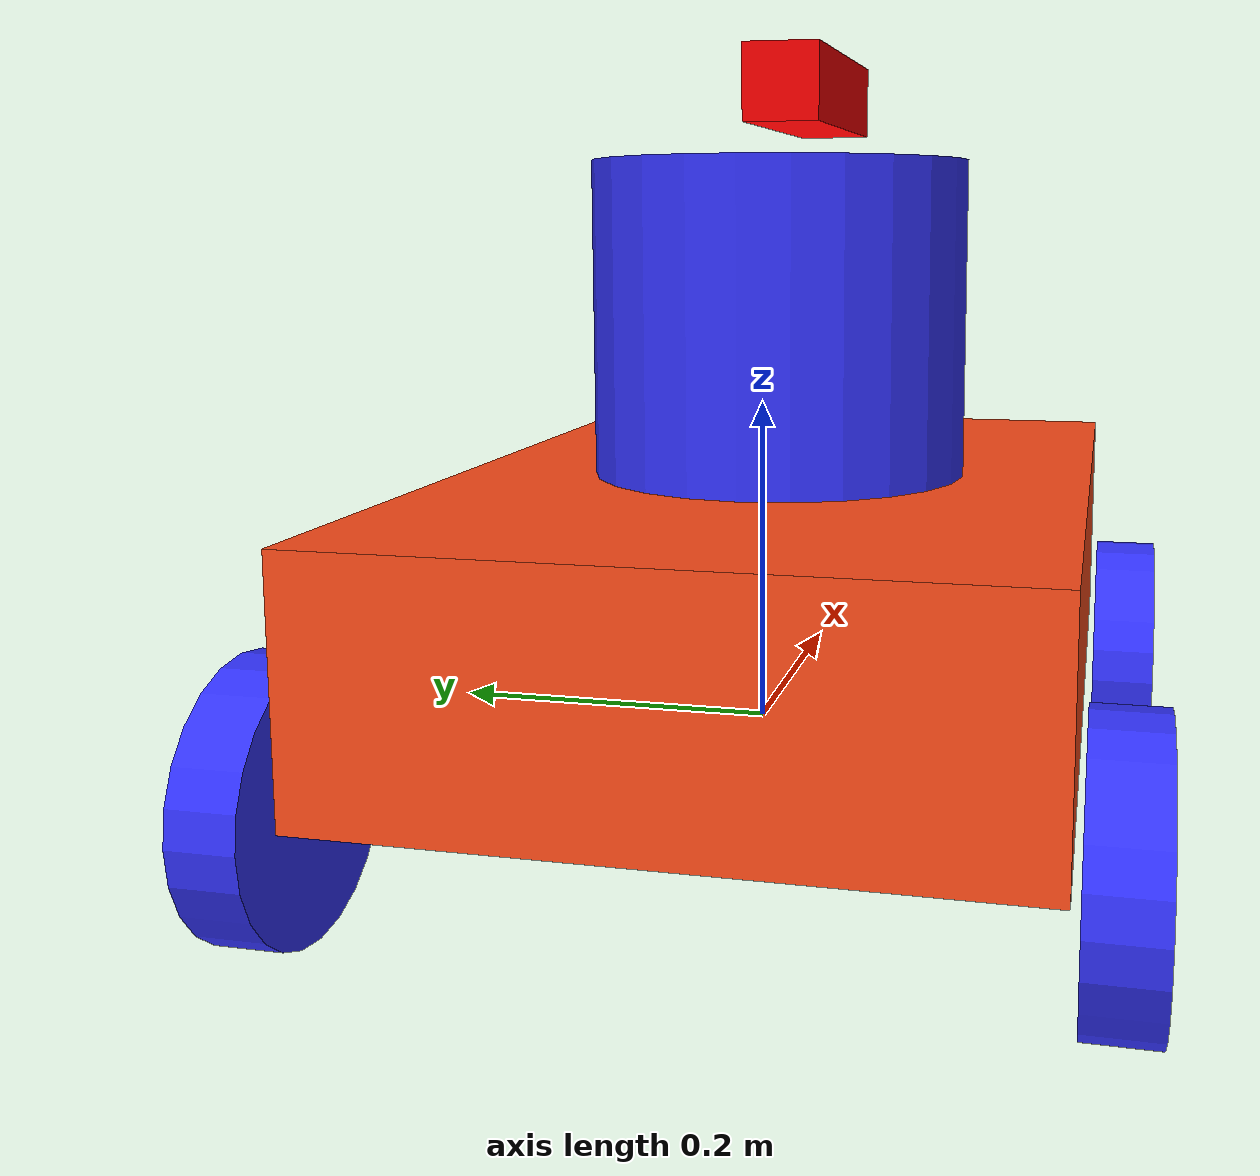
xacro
<?xml version="1.0"?>
<robot xmlns:xacro="http://www.ros.org/wiki/xacro">

    <xacro:include filename="inertial_macros.xacro"/>

    <material name="white">
        <color rgba="1 1 1 1" />
    </material>

    <material name="orange">
        <color rgba="1 0.3 0.1 1"/>
    </material>

    <material name="blue">
        <color rgba="0.2 0.2 1 1"/>
    </material>

    <material name="black">
        <color rgba="0 0 0 1"/>
    </material>

    <material name="red">
        <color rgba="1 0 0 1"/>
    </material>

    <!-- BASE LINK -->
    <link name="base_link">
    </link>

    <!-- BASE_FOOTPRINT LINK -->
    <joint name="base_footprint_joint" type="fixed">
        <parent link="base_link"/>
        <child link="base_footprint"/>
        <origin xyz="0 0 -0.08" rpy="0 0 0"/>
    </joint>

    <link name="base_footprint">
    </link>

    <!-- CHASSIS LINK -->
    <joint name="chassis_joint" type="fixed">
        <parent link="base_link"/>
        <child link="chassis"/>
        <origin xyz="-0.1 0 0"/>
    </joint>

    <link name="chassis">
        <visual>
            <origin xyz="0.15 0 0.075"/>
            <geometry>
                <box size="0.6 0.4 0.15"/>
            </geometry>
            <material name="orange"/>
        </visual>
        <collision>
            <origin xyz="0.15 0 0.075"/>
            <geometry>
                <box size="0.6 0.4 0.15"/>
            </geometry>
        </collision>
        <xacro:inertial_box mass="0.5" x="0.6" y="0.4" z="0.15">
            <origin xyz="0.15 0 0.075" rpy="0 0 0"/>
        </xacro:inertial_box>
    </link>

    <gazebo reference="chassis">
        <material>Gazebo/Orange</material>
    </gazebo>

    <!-- FRONT LEFT WHEEL LINK -->
    <joint name="front_left_wheel_joint" type="continuous">
        <parent link="base_link"/>
        <child link="front_left_wheel"/>
        <origin xyz="0.2 0.225 0" rpy="-${pi/2} 0 0" />
        <axis xyz="0 0 1"/>
    </joint>

    <link name="front_left_wheel">
        <visual>
            <geometry>
                <cylinder radius="0.08" length="0.04"/>
            </geometry>
            <material name="blue"/>
        </visual>
        <collision>
            <geometry>
                <cylinder radius="0.08" length="0.04"/>
            </geometry>
        </collision>
        <xacro:inertial_cylinder mass="0.1" length="0.04" radius="0.08">
            <origin xyz="0 0 0" rpy="0 0 0"/>
        </xacro:inertial_cylinder>
    </link>

    <gazebo reference="front_left_wheel">
        <material>Gazebo/Blue</material>
    </gazebo>

    <!-- FRONT RIGHT WHEEL LINK -->
    <joint name="front_right_wheel_joint" type="continuous">
        <parent link="base_link"/>
        <child link="front_right_wheel"/>
        <origin xyz="0.2 -0.225 0" rpy="${pi/2} 0 0" />
        <axis xyz="0 0 -1"/>
    </joint>

    <link name="front_right_wheel">
        <visual>
            <geometry>
                <cylinder radius="0.08" length="0.04"/>
            </geometry>
            <material name="blue"/>
        </visual>
        <collision>
            <geometry>
                <cylinder radius="0.08" length="0.04"/>
            </geometry>
        </collision>
        <xacro:inertial_cylinder mass="0.1" length="0.04" radius="0.08">
            <origin xyz="0 0 0" rpy="0 0 0"/>
        </xacro:inertial_cylinder>
    </link>

    <gazebo reference="front_right_wheel">
        <material>Gazebo/Blue</material>
    </gazebo>

    <!-- REAR LEFT WHEEL LINK -->
    <joint name="rear_left_wheel_joint" type="continuous">
        <parent link="base_link"/>
        <child link="rear_left_wheel"/>
        <origin xyz="-0.2 0.225 0" rpy="-${pi/2} 0 0" />
        <axis xyz="0 0 1"/>
    </joint>

    <link name="rear_left_wheel">
        <visual>
            <geometry>
                <cylinder radius="0.08" length="0.04"/>
            </geometry>
            <material name="blue"/>
        </visual>
        <collision>
            <geometry>
                <cylinder radius="0.08" length="0.04"/>
            </geometry>
        </collision>
        <xacro:inertial_cylinder mass="0.1" length="0.04" radius="0.08">
            <origin xyz="0 0 0" rpy="0 0 0"/>
        </xacro:inertial_cylinder>
    </link>

    <gazebo reference="rear_left_wheel">
        <material>Gazebo/Blue</material>
    </gazebo>

    <!-- REAR RIGHT WHEEL LINK -->
    <joint name="rear_right_wheel_joint" type="continuous">
        <parent link="base_link"/>
        <child link="rear_right_wheel"/>
        <origin xyz="-0.2 -0.225 0" rpy="${pi/2} 0 0" />
        <axis xyz="0 0 -1"/>
    </joint>

    <link name="rear_right_wheel">
        <visual>
            <geometry>
                <cylinder radius="0.08" length="0.04"/>
            </geometry>
            <material name="blue"/>
        </visual>
        <collision>
            <geometry>
                <cylinder radius="0.08" length="0.04"/>
            </geometry>
        </collision>
        <xacro:inertial_cylinder mass="0.1" length="0.04" radius="0.08">
            <origin xyz="0 0 0" rpy="0 0 0"/>
        </xacro:inertial_cylinder>
    </link>

    <gazebo reference="rear_right_wheel">
        <material>Gazebo/Blue</material>
    </gazebo>

    <!-- WATER TANK LINK -->
    <joint name="water_tank_joint" type="fixed">
        <parent link="chassis"/>
        <child link="water_tank"/>
        <origin xyz="0.15 0 0.25" rpy="0 0 0"/>
    </joint>

    <link name="water_tank">
        <visual>
            <geometry>
                <cylinder radius="0.12" length="0.2"/>
            </geometry>
            <material name="blue"/>
        </visual>
        <collision>
            <geometry>
                <cylinder radius="0.12" length="0.2"/>
            </geometry>
        </collision>
        <xacro:inertial_cylinder mass="2.0" length="0.2" radius="0.12">
            <origin xyz="0 0 0" rpy="0 0 0"/>
        </xacro:inertial_cylinder>
    </link>

    <gazebo reference="water_tank">
        <material>Gazebo/Blue</material>
    </gazebo>

    <!-- WATER PUMP/NOZZLE LINK -->
    <joint name="water_pump_joint" type="revolute">
        <parent link="water_tank"/>
        <child link="water_pump"/>
        <origin xyz="0 0 0.15" rpy="0 0 0"/>
        <axis xyz="0 0 1"/>
        <limit lower="-${pi}" upper="${pi}" effort="10" velocity="1"/>
    </joint>

    <link name="water_pump">
        <visual>
            <origin xyz="0.1 0 0"/>
            <geometry>
                <box size="0.2 0.05 0.05"/>
            </geometry>
            <material name="red"/>
        </visual>
        <collision>
            <origin xyz="0.1 0 0"/>
            <geometry>
                <box size="0.2 0.05 0.05"/>
            </geometry>
        </collision>
        <xacro:inertial_box mass="0.2" x="0.2" y="0.05" z="0.05">
            <origin xyz="0.1 0 0" rpy="0 0 0"/>
        </xacro:inertial_box>
    </link>

    <gazebo reference="water_pump">
        <material>Gazebo/Red</material>
    </gazebo>

    <!-- CAMERA LINK -->
    <joint name="camera_joint" type="fixed">
        <parent link="chassis"/>
        <child link="camera"/>
        <origin xyz="0.305 0 0.08" rpy="0 0 0"/>
    </joint>

    <link name="camera">
        <visual>
            <geometry>
                <box size="0.010 0.03 0.03"/>
            </geometry>
            <material name="black"/>
        </visual>
        <collision>
            <geometry>
                <box size="0.010 0.03 0.03"/>
            </geometry>
        </collision>
        <xacro:inertial_box mass="0.1" x="0.010" y="0.03" z="0.03">
            <origin xyz="0 0 0" rpy="0 0 0"/>
        </xacro:inertial_box>
    </link>

    <gazebo reference="camera">
        <material>Gazebo/Black</material>
        <sensor name="camera" type="camera">
            <pose> 0 0 0 0 0 0 </pose>
            <visualize>true</visualize>
            <update_rate>10</update_rate>
            <camera>
                <horizontal_fov>1.089</horizontal_fov>
                <image>
                    <format>R8G8B8</format>
                    <width>640</width>
                    <height>480</height>
                </image>
                <clip>
                    <near>0.05</near>
                    <far>8.0</far>
                </clip>
            </camera>
            <plugin name="camera_controller" filename="libgazebo_ros_camera.so">
                <frame_name>camera</frame_name>
            </plugin>
        </sensor>
    </gazebo>

</robot>
